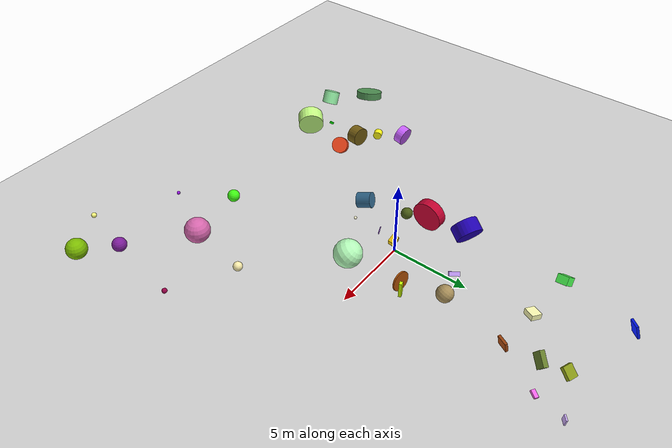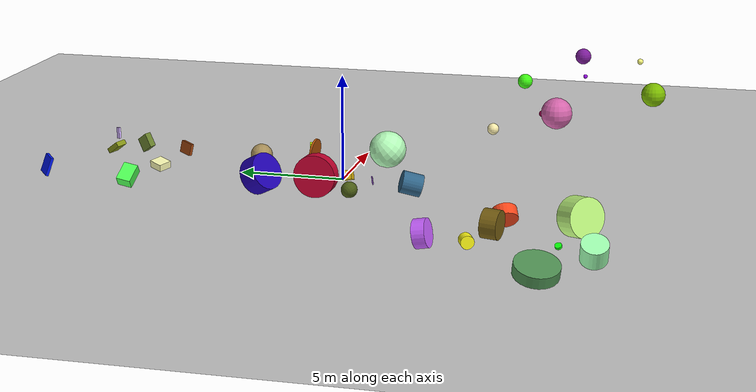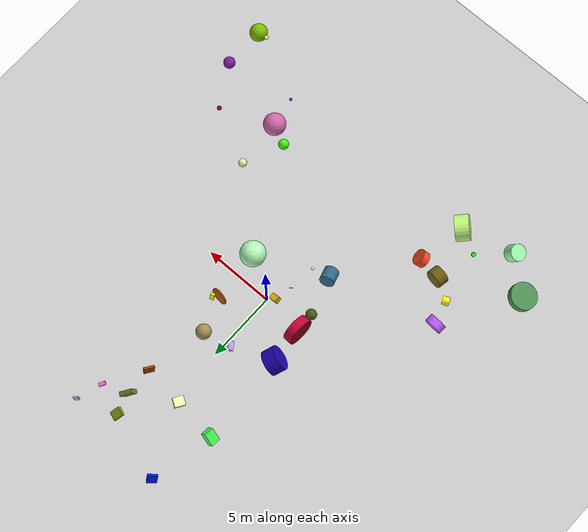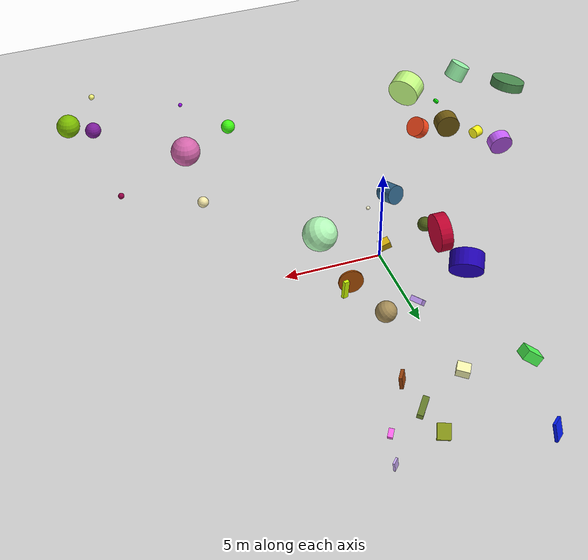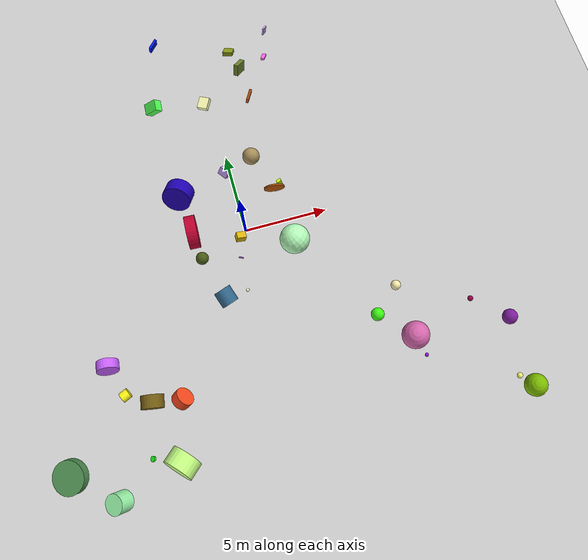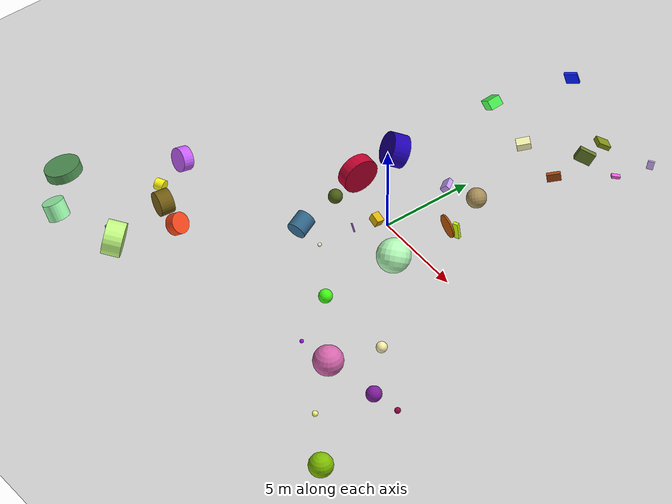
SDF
<?xml version="1.0" ?>
<sdf version="1.6">
  <world name="default">
    <atmosphere type="adiabatic"/>
    <light name="group/sun" type="directional">
      <direction>-0.5 0.1 -0.9</direction>
      <attenuation>
        <range>1000.0</range>
        <quadratic>0.001</quadratic>
        <constant>0.9</constant>
        <linear>0.01</linear>
      </attenuation>
      <pose frame="">0 0 20 0 -0 0</pose>
      <cast_shadows>1</cast_shadows>
      <specular>0.2 0.2 0.2 1</specular>
      <diffuse>0.8 0.8 0.8 1.0</diffuse>
    </light>
    <gravity>0 0 -9.8</gravity>
    <model name="cylinder">
      <allow_auto_disable>0</allow_auto_disable>
      <static>0</static>
      <pose frame="">-8.88345 -7.64428 0.301629 2.73135 1.54346 -1.01534e-15</pose>
      <link name="link">
        <kinematic>0</kinematic>
        <inertial>
          <pose frame="">0 0 0 0 -0 0</pose>
          <mass>0.420449504234</mass>
          <inertia>
            <ixz>0.0</ixz>
            <ixx>0.0176564145472</ixx>
            <ixy>0.0</ixy>
            <izz>0.0183662574659</izz>
            <iyy>0.0176564145472</iyy>
            <iyz>0.0</iyz>
          </inertia>
        </inertial>
        <pose frame="">0 0 0 0 -0 0</pose>
        <gravity>1</gravity>
        <self_collide>0</self_collide>
        <collision name="collision">
          <geometry>
            <cylinder>
              <length>0.491767279188</length>
              <radius>0.295575484091</radius>
            </cylinder>
          </geometry>
          <max_contacts>20</max_contacts>
          <pose frame="">0 0 0 0 -0 0</pose>
        </collision>
        <visual name="visual">
          <geometry>
            <cylinder>
              <length>0.491767279188</length>
              <radius>0.295575484091</radius>
            </cylinder>
          </geometry>
          <material>
            <diffuse>1.0 0.976470588235 0.0901960784314 1</diffuse>
            <ambient>1 0.976471 0.0901961 1</ambient>
          </material>
          <cast_shadows>1</cast_shadows>
          <transparency>0.0</transparency>
          <pose frame="">0 0 0 0 -0 0</pose>
        </visual>
      </link>
      <self_collide>0</self_collide>
    </model>
    <model name="cuboid">
      <allow_auto_disable>0</allow_auto_disable>
      <static>0</static>
      <pose frame="">2.73064 2.28966 0.480365 -2.9038 1.44472 0.552469</pose>
      <link name="link">
        <kinematic>0</kinematic>
        <inertial>
          <pose frame="">0 0 0 0 -0 0</pose>
          <mass>0.275583620946</mass>
          <inertia>
            <ixz>0.0</ixz>
            <ixx>0.00255171124685</ixx>
            <ixy>0.0</ixy>
            <izz>0.0204856126975</izz>
            <iyy>0.0216394588672</iyy>
            <iyz>0.0</iyz>
          </inertia>
        </inertial>
        <pose frame="">0 0 0 0 -0 0</pose>
        <gravity>1</gravity>
        <self_collide>0</self_collide>
        <collision name="collision">
          <geometry>
            <box>
              <size>0.928219 0.174454 0.284038</size>
            </box>
          </geometry>
          <max_contacts>20</max_contacts>
          <pose frame="">0 0 0 0 -0 0</pose>
        </collision>
        <visual name="visual">
          <geometry>
            <box>
              <size>0.928219 0.174454 0.284038</size>
            </box>
          </geometry>
          <material>
            <diffuse>0.803921568627 0.992156862745 0.0078431372549 1</diffuse>
            <ambient>0.803922 0.992157 0.00784314 1</ambient>
          </material>
          <cast_shadows>1</cast_shadows>
          <transparency>0.0</transparency>
          <pose frame="">0 0 0 0 -0 0</pose>
        </visual>
      </link>
      <self_collide>0</self_collide>
    </model>
    <model name="cuboid_7">
      <allow_auto_disable>0</allow_auto_disable>
      <static>0</static>
      <pose frame="">4.11034 11.3443 0.137054 2.0256 1.30503 -1.66371</pose>
      <link name="link">
        <kinematic>0</kinematic>
        <inertial>
          <pose frame="">0 0 0 0 -0 0</pose>
          <mass>0.415318016222</mass>
          <inertia>
            <ixz>0.0</ixz>
            <ixx>0.00924436996587</ixx>
            <ixy>0.0</ixy>
            <izz>0.00782793442775</izz>
            <iyy>0.00284278543665</iyy>
            <iyz>0.0</iyz>
          </inertia>
        </inertial>
        <pose frame="">0 0 0 0 -0 0</pose>
        <gravity>1</gravity>
        <self_collide>0</self_collide>
        <collision name="collision">
          <geometry>
            <box>
              <size>0.143548 0.453399 0.248056</size>
            </box>
          </geometry>
          <max_contacts>20</max_contacts>
          <pose frame="">0 0 0 0 -0 0</pose>
        </collision>
        <visual name="visual">
          <geometry>
            <box>
              <size>0.143548 0.453399 0.248056</size>
            </box>
          </geometry>
          <material>
            <diffuse>1.0 0.388235294118 0.913725490196 1</diffuse>
            <ambient>1 0.388235 0.913725 1</ambient>
          </material>
          <cast_shadows>1</cast_shadows>
          <transparency>0.0</transparency>
          <pose frame="">0 0 0 0 -0 0</pose>
        </visual>
      </link>
      <self_collide>0</self_collide>
    </model>
    <model name="cuboid_6">
      <allow_auto_disable>0</allow_auto_disable>
      <static>0</static>
      <pose frame="">-3.5968 9.3845 0.550721 0.686225 0.16848 -1.63833</pose>
      <link name="link">
        <kinematic>0</kinematic>
        <inertial>
          <pose frame="">0 0 0 0 -0 0</pose>
          <mass>0.127752500951</mass>
          <inertia>
            <ixz>0.0</ixz>
            <ixx>0.012345772646</ixx>
            <ixy>0.0</ixy>
            <izz>0.0144442273607</izz>
            <iyy>0.00790231115094</iyy>
            <iyz>0.0</iyz>
          </inertia>
        </inertial>
        <pose frame="">0 0 0 0 -0 0</pose>
        <gravity>1</gravity>
        <self_collide>0</self_collide>
        <collision name="collision">
          <geometry>
            <box>
              <size>0.685342 0.941847 0.522095</size>
            </box>
          </geometry>
          <max_contacts>20</max_contacts>
          <pose frame="">0 0 0 0 -0 0</pose>
        </collision>
        <visual name="visual">
          <geometry>
            <box>
              <size>0.685342 0.941847 0.522095</size>
            </box>
          </geometry>
          <material>
            <diffuse>0.305882352941 0.992156862745 0.329411764706 1</diffuse>
            <ambient>0.305882 0.992157 0.329412 1</ambient>
          </material>
          <cast_shadows>1</cast_shadows>
          <transparency>0.0</transparency>
          <pose frame="">0 0 0 0 -0 0</pose>
        </visual>
      </link>
      <self_collide>0</self_collide>
    </model>
    <model name="cuboid_5">
      <allow_auto_disable>0</allow_auto_disable>
      <static>0</static>
      <pose frame="">2.45066 8.66659 0.350901 -2.47986 -1.35944 -1.20505</pose>
      <link name="link">
        <kinematic>0</kinematic>
        <inertial>
          <pose frame="">0 0 0 0 -0 0</pose>
          <mass>0.699296504962</mass>
          <inertia>
            <ixz>0.0</ixz>
            <ixx>0.0325672144286</ixx>
            <ixy>0.0</ixy>
            <izz>0.0515609055258</izz>
            <iyy>0.0221154868499</iyy>
            <iyz>0.0</iyz>
          </inertia>
        </inertial>
        <pose frame="">0 0 0 0 -0 0</pose>
        <gravity>1</gravity>
        <self_collide>0</self_collide>
        <collision name="collision">
          <geometry>
            <box>
              <size>0.593901 0.729432 0.163662</size>
            </box>
          </geometry>
          <max_contacts>20</max_contacts>
          <pose frame="">0 0 0 0 -0 0</pose>
        </collision>
        <visual name="visual">
          <geometry>
            <box>
              <size>0.593901 0.729432 0.163662</size>
            </box>
          </geometry>
          <material>
            <diffuse>0.627450980392 0.270588235294 0.0549019607843 1</diffuse>
            <ambient>0.627451 0.270588 0.054902 1</ambient>
          </material>
          <cast_shadows>1</cast_shadows>
          <transparency>0.0</transparency>
          <pose frame="">0 0 0 0 -0 0</pose>
        </visual>
      </link>
      <self_collide>0</self_collide>
    </model>
    <model name="cuboid_4">
      <allow_auto_disable>0</allow_auto_disable>
      <static>0</static>
      <pose frame="">-2.65857 13.8559 0.502406 2.84496 0.167367 -2.38742</pose>
      <link name="link">
        <kinematic>0</kinematic>
        <inertial>
          <pose frame="">0 0 0 0 -0 0</pose>
          <mass>0.588542747056</mass>
          <inertia>
            <ixz>0.0</ixz>
            <ixx>0.0406767653405</ixx>
            <ixy>0.0</ixy>
            <izz>0.0244388118272</izz>
            <iyy>0.0630153020406</iyy>
            <iyz>0.0</iyz>
          </inertia>
        </inertial>
        <pose frame="">0 0 0 0 -0 0</pose>
        <gravity>1</gravity>
        <self_collide>0</self_collide>
        <collision name="collision">
          <geometry>
            <box>
              <size>0.690565 0.146327 0.898866</size>
            </box>
          </geometry>
          <max_contacts>20</max_contacts>
          <pose frame="">0 0 0 0 -0 0</pose>
        </collision>
        <visual name="visual">
          <geometry>
            <box>
              <size>0.690565 0.146327 0.898866</size>
            </box>
          </geometry>
          <material>
            <diffuse>0.0078431372549 0.105882352941 0.976470588235 1</diffuse>
            <ambient>0.00784314 0.105882 0.976471 1</ambient>
          </material>
          <cast_shadows>1</cast_shadows>
          <transparency>0.0</transparency>
          <pose frame="">0 0 0 0 -0 0</pose>
        </visual>
      </link>
      <self_collide>0</self_collide>
    </model>
    <model name="cuboid_3">
      <allow_auto_disable>0</allow_auto_disable>
      <static>0</static>
      <pose frame="">-0.402149 -0.368209 0.330192 -1.90648 -0.189173 -1.52641</pose>
      <link name="link">
        <kinematic>0</kinematic>
        <inertial>
          <pose frame="">0 0 0 0 -0 0</pose>
          <mass>0.967904357186</mass>
          <inertia>
            <ixz>0.0</ixz>
            <ixx>0.0397575332008</ixx>
            <ixy>0.0</ixy>
            <izz>0.0299328997805</izz>
            <iyy>0.0395996607649</iyy>
            <iyz>0.0</iyz>
          </inertia>
        </inertial>
        <pose frame="">0 0 0 0 -0 0</pose>
        <gravity>1</gravity>
        <self_collide>0</self_collide>
        <collision name="collision">
          <geometry>
            <box>
              <size>0.429621 0.431893 0.553515</size>
            </box>
          </geometry>
          <max_contacts>20</max_contacts>
          <pose frame="">0 0 0 0 -0 0</pose>
        </collision>
        <visual name="visual">
          <geometry>
            <box>
              <size>0.429621 0.431893 0.553515</size>
            </box>
          </geometry>
          <material>
            <diffuse>0.858823529412 0.705882352941 0.0470588235294 1</diffuse>
            <ambient>0.858824 0.705882 0.0470588 1</ambient>
          </material>
          <cast_shadows>1</cast_shadows>
          <transparency>0.0</transparency>
          <pose frame="">0 0 0 0 -0 0</pose>
        </visual>
      </link>
      <self_collide>0</self_collide>
    </model>
    <model name="cuboid_2">
      <allow_auto_disable>0</allow_auto_disable>
      <static>0</static>
      <pose frame="">-0.689775 -1.6185 0.238166 -2.81068 0.36883 -2.32449</pose>
      <link name="link">
        <kinematic>0</kinematic>
        <inertial>
          <pose frame="">0 0 0 0 -0 0</pose>
          <mass>0.70911772063</mass>
          <inertia>
            <ixz>0.0</ixz>
            <ixx>0.0145948840139</ixx>
            <ixy>0.0</ixy>
            <izz>0.000429727144734</izz>
            <iyy>0.0148091645293</iyy>
            <iyz>0.0</iyz>
          </inertia>
        </inertial>
        <pose frame="">0 0 0 0 -0 0</pose>
        <gravity>1</gravity>
        <self_collide>0</self_collide>
        <collision name="collision">
          <geometry>
            <box>
              <size>0.0738179 0.0426959 0.495134</size>
            </box>
          </geometry>
          <max_contacts>20</max_contacts>
          <pose frame="">0 0 0 0 -0 0</pose>
        </collision>
        <visual name="visual">
          <geometry>
            <box>
              <size>0.0738179 0.0426959 0.495134</size>
            </box>
          </geometry>
          <material>
            <diffuse>0.701960784314 0.435294117647 0.964705882353 1</diffuse>
            <ambient>0.701961 0.435294 0.964706 1</ambient>
          </material>
          <cast_shadows>1</cast_shadows>
          <transparency>0.0</transparency>
          <pose frame="">0 0 0 0 -0 0</pose>
        </visual>
      </link>
      <self_collide>0</self_collide>
    </model>
    <model name="cuboid_1">
      <allow_auto_disable>0</allow_auto_disable>
      <static>0</static>
      <pose frame="">-0.344435 3.98685 0.260107 1.57655 0.789974 -2.50977</pose>
      <link name="link">
        <kinematic>0</kinematic>
        <inertial>
          <pose frame="">0 0 0 0 -0 0</pose>
          <mass>0.808031799206</mass>
          <inertia>
            <ixz>0.0</ixz>
            <ixx>0.0317887161804</ixx>
            <ixy>0.0</ixy>
            <izz>0.0193071423133</izz>
            <iyy>0.0414914633755</iyy>
            <iyz>0.0</iyz>
          </inertia>
        </inertial>
        <pose frame="">0 0 0 0 -0 0</pose>
        <gravity>1</gravity>
        <self_collide>0</self_collide>
        <collision name="collision">
          <geometry>
            <box>
              <size>0.464124 0.267052 0.633067</size>
            </box>
          </geometry>
          <max_contacts>20</max_contacts>
          <pose frame="">0 0 0 0 -0 0</pose>
        </collision>
        <visual name="visual">
          <geometry>
            <box>
              <size>0.464124 0.267052 0.633067</size>
            </box>
          </geometry>
          <material>
            <diffuse>0.792156862745 0.627450980392 1.0 1</diffuse>
            <ambient>0.792157 0.627451 1 1</ambient>
          </material>
          <cast_shadows>1</cast_shadows>
          <transparency>0.0</transparency>
          <pose frame="">0 0 0 0 -0 0</pose>
        </visual>
      </link>
      <self_collide>0</self_collide>
    </model>
    <model name="cylinder_11">
      <allow_auto_disable>0</allow_auto_disable>
      <static>0</static>
      <pose frame="">-3.08162 0.440654 0.994113 -1.70234 1.34954 -1.73662</pose>
      <link name="link">
        <kinematic>0</kinematic>
        <inertial>
          <pose frame="">0 0 0 0 -0 0</pose>
          <mass>0.19075837809</mass>
          <inertia>
            <ixz>0.0</ixz>
            <ixx>0.0525499972108</ixx>
            <ixy>0.0</ixy>
            <izz>0.092687990486</izz>
            <iyy>0.0525499972108</iyy>
            <iyz>0.0</iyz>
          </inertia>
        </inertial>
        <pose frame="">0 0 0 0 -0 0</pose>
        <gravity>1</gravity>
        <self_collide>0</self_collide>
        <collision name="collision">
          <geometry>
            <cylinder>
              <length>0.6248197761</length>
              <radius>0.985791162665</radius>
            </cylinder>
          </geometry>
          <max_contacts>20</max_contacts>
          <pose frame="">0 0 0 0 -0 0</pose>
        </collision>
        <visual name="visual">
          <geometry>
            <cylinder>
              <length>0.6248197761</length>
              <radius>0.985791162665</radius>
            </cylinder>
          </geometry>
          <material>
            <diffuse>0.752941176471 0.0078431372549 0.18431372549 1</diffuse>
            <ambient>0.752941 0.00784314 0.184314 1</ambient>
          </material>
          <cast_shadows>1</cast_shadows>
          <transparency>0.0</transparency>
          <pose frame="">0 0 0 0 -0 0</pose>
        </visual>
      </link>
      <self_collide>0</self_collide>
    </model>
    <model name="cylinder_10">
      <allow_auto_disable>0</allow_auto_disable>
      <static>0</static>
      <pose frame="">2.33888 2.01075 0.62675 1.68696 -0.18526 -0.145754</pose>
      <link name="link">
        <kinematic>0</kinematic>
        <inertial>
          <pose frame="">0 0 0 0 -0 0</pose>
          <mass>0.557636464645</mass>
          <inertia>
            <ixz>0.0</ixz>
            <ixx>0.0549482865547</ixx>
            <ixy>0.0</ixy>
            <izz>0.108967179002</izz>
            <iyy>0.0549482865547</iyy>
            <iyz>0.0</iyz>
          </inertia>
        </inertial>
        <pose frame="">0 0 0 0 -0 0</pose>
        <gravity>1</gravity>
        <self_collide>0</self_collide>
        <collision name="collision">
          <geometry>
            <cylinder>
              <length>0.1</length>
              <radius>0.625154366825</radius>
            </cylinder>
          </geometry>
          <max_contacts>20</max_contacts>
          <pose frame="">0 0 0 0 -0 0</pose>
        </collision>
        <visual name="visual">
          <geometry>
            <cylinder>
              <length>0.1</length>
              <radius>0.625154366825</radius>
            </cylinder>
          </geometry>
          <material>
            <diffuse>0.674509803922 0.309803921569 0.0235294117647 1</diffuse>
            <ambient>0.67451 0.309804 0.0235294 1</ambient>
          </material>
          <cast_shadows>1</cast_shadows>
          <transparency>0.0</transparency>
          <pose frame="">0 0 0 0 -0 0</pose>
        </visual>
      </link>
      <self_collide>0</self_collide>
    </model>
    <model name="cuboid_9">
      <allow_auto_disable>0</allow_auto_disable>
      <static>0</static>
      <pose frame="">-0.441233 8.97251 0.267765 2.34811 -1.35973 -2.88506</pose>
      <link name="link">
        <kinematic>0</kinematic>
        <inertial>
          <pose frame="">0 0 0 0 -0 0</pose>
          <mass>0.959522851609</mass>
          <inertia>
            <ixz>0.0</ixz>
            <ixx>0.0768844545552</ixx>
            <ixy>0.0</ixy>
            <izz>0.0523883911799</izz>
            <iyy>0.0427559107268</iyy>
            <iyz>0.0</iyz>
          </inertia>
        </inertial>
        <pose frame="">0 0 0 0 -0 0</pose>
        <gravity>1</gravity>
        <self_collide>0</self_collide>
        <collision name="collision">
          <geometry>
            <box>
              <size>0.337906 0.735527 0.648486</size>
            </box>
          </geometry>
          <max_contacts>20</max_contacts>
          <pose frame="">0 0 0 0 -0 0</pose>
        </collision>
        <visual name="visual">
          <geometry>
            <box>
              <size>0.337906 0.735527 0.648486</size>
            </box>
          </geometry>
          <material>
            <diffuse>1.0 0.996078431373 0.713725490196 1</diffuse>
            <ambient>1 0.996078 0.713725 1</ambient>
          </material>
          <cast_shadows>1</cast_shadows>
          <transparency>0.0</transparency>
          <pose frame="">0 0 0 0 -0 0</pose>
        </visual>
      </link>
      <self_collide>0</self_collide>
    </model>
    <model name="cuboid_8">
      <allow_auto_disable>0</allow_auto_disable>
      <static>0</static>
      <pose frame="">4.64953 13.17 0.30841 -2.94443 -1.39008 0.562978</pose>
      <link name="link">
        <kinematic>0</kinematic>
        <inertial>
          <pose frame="">0 0 0 0 -0 0</pose>
          <mass>0.187271177603</mass>
          <inertia>
            <ixz>0.0</ixz>
            <ixx>0.0019835315921</ixx>
            <ixy>0.0</ixy>
            <izz>0.00504940106489</izz>
            <iyy>0.00679151657157</iyy>
            <iyz>0.0</iyz>
          </inertia>
        </inertial>
        <pose frame="">0 0 0 0 -0 0</pose>
        <gravity>1</gravity>
        <self_collide>0</self_collide>
        <collision name="collision">
          <geometry>
            <box>
              <size>0.56198 0.0879475 0.345494</size>
            </box>
          </geometry>
          <max_contacts>20</max_contacts>
          <pose frame="">0 0 0 0 -0 0</pose>
        </collision>
        <visual name="visual">
          <geometry>
            <box>
              <size>0.56198 0.0879475 0.345494</size>
            </box>
          </geometry>
          <material>
            <diffuse>0.807843137255 0.682352941176 0.980392156863 1</diffuse>
            <ambient>0.807843 0.682353 0.980392 1</ambient>
          </material>
          <cast_shadows>1</cast_shadows>
          <transparency>0.0</transparency>
          <pose frame="">0 0 0 0 -0 0</pose>
        </visual>
      </link>
      <self_collide>0</self_collide>
    </model>
    <model name="cylinder_9">
      <allow_auto_disable>0</allow_auto_disable>
      <static>0</static>
      <pose frame="">-3.34911 2.98221 0.981661 0.368207 -1.06389 0.686842</pose>
      <link name="link">
        <kinematic>0</kinematic>
        <inertial>
          <pose frame="">0 0 0 0 -0 0</pose>
          <mass>0.202478222105</mass>
          <inertia>
            <ixz>0.0</ixz>
            <ixx>0.0522882726241</ixx>
            <ixy>0.0</ixy>
            <izz>0.0765701642064</izz>
            <iyy>0.0522882726241</iyy>
            <iyz>0.0</iyz>
          </inertia>
        </inertial>
        <pose frame="">0 0 0 0 -0 0</pose>
        <gravity>1</gravity>
        <self_collide>0</self_collide>
        <collision name="collision">
          <geometry>
            <cylinder>
              <length>0.910992837577</length>
              <radius>0.869672280223</radius>
            </cylinder>
          </geometry>
          <max_contacts>20</max_contacts>
          <pose frame="">0 0 0 0 -0 0</pose>
        </collision>
        <visual name="visual">
          <geometry>
            <cylinder>
              <length>0.910992837577</length>
              <radius>0.869672280223</radius>
            </cylinder>
          </geometry>
          <material>
            <diffuse>0.125490196078 0.0 0.694117647059 1</diffuse>
            <ambient>0.12549 0 0.694118 1</ambient>
          </material>
          <cast_shadows>1</cast_shadows>
          <transparency>0.0</transparency>
          <pose frame="">0 0 0 0 -0 0</pose>
        </visual>
      </link>
      <self_collide>0</self_collide>
    </model>
    <model name="cylinder_8">
      <allow_auto_disable>0</allow_auto_disable>
      <static>0</static>
      <pose frame="">-2.1078 -3.78632 0.623027 -2.45663 1.2198 2.61151</pose>
      <link name="link">
        <kinematic>0</kinematic>
        <inertial>
          <pose frame="">0 0 0 0 -0 0</pose>
          <mass>0.744334276761</mass>
          <inertia>
            <ixz>0.0</ixz>
            <ixx>0.105377505374</ixx>
            <ixy>0.0</ixy>
            <izz>0.0988781269524</izz>
            <iyy>0.105377505374</iyy>
            <iyz>0.0</iyz>
          </inertia>
        </inertial>
        <pose frame="">0 0 0 0 -0 0</pose>
        <gravity>1</gravity>
        <self_collide>0</self_collide>
        <collision name="collision">
          <geometry>
            <cylinder>
              <length>0.949646115979</length>
              <radius>0.515443543432</radius>
            </cylinder>
          </geometry>
          <max_contacts>20</max_contacts>
          <pose frame="">0 0 0 0 -0 0</pose>
        </collision>
        <visual name="visual">
          <geometry>
            <cylinder>
              <length>0.949646115979</length>
              <radius>0.515443543432</radius>
            </cylinder>
          </geometry>
          <material>
            <diffuse>0.192156862745 0.4 0.541176470588 1</diffuse>
            <ambient>0.192157 0.4 0.541176 1</ambient>
          </material>
          <cast_shadows>1</cast_shadows>
          <transparency>0.0</transparency>
          <pose frame="">0 0 0 0 -0 0</pose>
        </visual>
      </link>
      <self_collide>0</self_collide>
    </model>
    <model name="cuboid_11">
      <allow_auto_disable>0</allow_auto_disable>
      <static>0</static>
      <pose frame="">1.96949 12.1861 0.330687 -1.6582 -0.951987 1.2862</pose>
      <link name="link">
        <kinematic>0</kinematic>
        <inertial>
          <pose frame="">0 0 0 0 -0 0</pose>
          <mass>0.565751800006</mass>
          <inertia>
            <ixz>0.0</ixz>
            <ixx>0.0443241193825</ixx>
            <ixy>0.0</ixy>
            <izz>0.0289398294124</izz>
            <iyy>0.021066053161</iyy>
            <iyz>0.0</iyz>
          </inertia>
        </inertial>
        <pose frame="">0 0 0 0 -0 0</pose>
        <gravity>1</gravity>
        <self_collide>0</self_collide>
        <collision name="collision">
          <geometry>
            <box>
              <size>0.245473 0.744028 0.621747</size>
            </box>
          </geometry>
          <max_contacts>20</max_contacts>
          <pose frame="">0 0 0 0 -0 0</pose>
        </collision>
        <visual name="visual">
          <geometry>
            <box>
              <size>0.245473 0.744028 0.621747</size>
            </box>
          </geometry>
          <material>
            <diffuse>0.533333333333 0.592156862745 0.0901960784314 1</diffuse>
            <ambient>0.533333 0.592157 0.0901961 1</ambient>
          </material>
          <cast_shadows>1</cast_shadows>
          <transparency>0.0</transparency>
          <pose frame="">0 0 0 0 -0 0</pose>
        </visual>
      </link>
      <self_collide>0</self_collide>
    </model>
    <model name="cuboid_10">
      <allow_auto_disable>0</allow_auto_disable>
      <static>0</static>
      <pose frame="">2.34274 10.738 0.543216 -2.84619 1.03911 -1.96769</pose>
      <link name="link">
        <kinematic>0</kinematic>
        <inertial>
          <pose frame="">0 0 0 0 -0 0</pose>
          <mass>0.586963601263</mass>
          <inertia>
            <ixz>0.0</ixz>
            <ixx>0.0441877648045</ixx>
            <ixy>0.0</ixy>
            <izz>0.028424741777</izz>
            <iyy>0.0639092797207</iyy>
            <iyz>0.0</iyz>
          </inertia>
        </inertial>
        <pose frame="">0 0 0 0 -0 0</pose>
        <gravity>1</gravity>
        <self_collide>0</self_collide>
        <collision name="collision">
          <geometry>
            <box>
              <size>0.701538 0.29827 0.902451</size>
            </box>
          </geometry>
          <max_contacts>20</max_contacts>
          <pose frame="">0 0 0 0 -0 0</pose>
        </collision>
        <visual name="visual">
          <geometry>
            <box>
              <size>0.701538 0.29827 0.902451</size>
            </box>
          </geometry>
          <material>
            <diffuse>0.4 0.494117647059 0.172549019608 1</diffuse>
            <ambient>0.4 0.494118 0.172549 1</ambient>
          </material>
          <cast_shadows>1</cast_shadows>
          <transparency>0.0</transparency>
          <pose frame="">0 0 0 0 -0 0</pose>
        </visual>
      </link>
      <self_collide>0</self_collide>
    </model>
    <model name="cylinder_1">
      <allow_auto_disable>0</allow_auto_disable>
      <static>0</static>
      <pose frame="">-6.5277 -12.0623 0.957076 0.742338 -1.35071 -2.54269e-16</pose>
      <link name="link">
        <kinematic>0</kinematic>
        <inertial>
          <pose frame="">0 0 0 0 -0 0</pose>
          <mass>0.529796709174</mass>
          <inertia>
            <ixz>0.0</ixz>
            <ixx>0.14659787219</ixx>
            <ixy>0.0</ixy>
            <izz>0.210720736677</izz>
            <iyy>0.14659787219</iyy>
            <iyz>0.0</iyz>
          </inertia>
        </inertial>
        <pose frame="">0 0 0 0 -0 0</pose>
        <gravity>1</gravity>
        <self_collide>0</self_collide>
        <collision name="collision">
          <geometry>
            <cylinder>
              <length>0.96645620648</length>
              <radius>0.891895571637</radius>
            </cylinder>
          </geometry>
          <max_contacts>20</max_contacts>
          <pose frame="">0 0 0 0 -0 0</pose>
        </collision>
        <visual name="visual">
          <geometry>
            <cylinder>
              <length>0.96645620648</length>
              <radius>0.891895571637</radius>
            </cylinder>
          </geometry>
          <material>
            <diffuse>0.76862745098 0.996078431373 0.509803921569 1</diffuse>
            <ambient>0.768627 0.996078 0.509804 1</ambient>
          </material>
          <cast_shadows>1</cast_shadows>
          <transparency>0.0</transparency>
          <pose frame="">0 0 0 0 -0 0</pose>
        </visual>
      </link>
      <self_collide>0</self_collide>
    </model>
    <model name="cylinder_3">
      <allow_auto_disable>0</allow_auto_disable>
      <static>0</static>
      <pose frame="">-12.5026 -11.1137 0.548044 -2.99456 -0.294689 1.08772e-17</pose>
      <link name="link">
        <kinematic>0</kinematic>
        <inertial>
          <pose frame="">0 0 0 0 -0 0</pose>
          <mass>0.481017029964</mass>
          <inertia>
            <ixz>0.0</ixz>
            <ixx>0.119952252922</ixx>
            <ixy>0.0</ixy>
            <izz>0.219172689681</izz>
            <iyy>0.119952252922</iyy>
            <iyz>0.0</iyz>
          </inertia>
        </inertial>
        <pose frame="">0 0 0 0 -0 0</pose>
        <gravity>1</gravity>
        <self_collide>0</self_collide>
        <collision name="collision">
          <geometry>
            <cylinder>
              <length>0.50852706675</length>
              <radius>0.954614419825</radius>
            </cylinder>
          </geometry>
          <max_contacts>20</max_contacts>
          <pose frame="">0 0 0 0 -0 0</pose>
        </collision>
        <visual name="visual">
          <geometry>
            <cylinder>
              <length>0.50852706675</length>
              <radius>0.954614419825</radius>
            </cylinder>
          </geometry>
          <material>
            <diffuse>0.309803921569 0.56862745098 0.325490196078 1</diffuse>
            <ambient>0.309804 0.568627 0.32549 1</ambient>
          </material>
          <cast_shadows>1</cast_shadows>
          <transparency>0.0</transparency>
          <pose frame="">0 0 0 0 -0 0</pose>
        </visual>
      </link>
      <self_collide>0</self_collide>
    </model>
    <model name="cylinder_2">
      <allow_auto_disable>0</allow_auto_disable>
      <static>0</static>
      <pose frame="">-10.1955 -13.084 0.68873 3.04733 0.523672 3.14159</pose>
      <link name="link">
        <kinematic>0</kinematic>
        <inertial>
          <pose frame="">0 0 0 0 -0 0</pose>
          <mass>0.422305299043</mass>
          <inertia>
            <ixz>0.0</ixz>
            <ixx>0.0650549379851</ixx>
            <ixy>0.0</ixy>
            <izz>0.0709472690483</izz>
            <iyy>0.0650549379851</iyy>
            <iyz>0.0</iyz>
          </inertia>
        </inertial>
        <pose frame="">0 0 0 0 -0 0</pose>
        <gravity>1</gravity>
        <self_collide>0</self_collide>
        <collision name="collision">
          <geometry>
            <cylinder>
              <length>0.916824079081</length>
              <radius>0.57965498328</radius>
            </cylinder>
          </geometry>
          <max_contacts>20</max_contacts>
          <pose frame="">0 0 0 0 -0 0</pose>
        </collision>
        <visual name="visual">
          <geometry>
            <cylinder>
              <length>0.916824079081</length>
              <radius>0.57965498328</radius>
            </cylinder>
          </geometry>
          <material>
            <diffuse>0.623529411765 0.996078431373 0.690196078431 1</diffuse>
            <ambient>0.623529 0.996078 0.690196 1</ambient>
          </material>
          <cast_shadows>1</cast_shadows>
          <transparency>0.0</transparency>
          <pose frame="">0 0 0 0 -0 0</pose>
        </visual>
      </link>
      <self_collide>0</self_collide>
    </model>
    <model name="cylinder_5">
      <allow_auto_disable>0</allow_auto_disable>
      <static>0</static>
      <pose frame="">-5.81838 -8.73767 0.598011 0.288731 -0.848021 3.14159</pose>
      <link name="link">
        <kinematic>0</kinematic>
        <inertial>
          <pose frame="">0 0 0 0 -0 0</pose>
          <mass>0.839387900694</mass>
          <inertia>
            <ixz>0.0</ixz>
            <ixx>0.0847113419942</ixx>
            <ixy>0.0</ixy>
            <izz>0.130243189649</izz>
            <iyy>0.0847113419942</iyy>
            <iyz>0.0</iyz>
          </inertia>
        </inertial>
        <pose frame="">0 0 0 0 -0 0</pose>
        <gravity>1</gravity>
        <self_collide>0</self_collide>
        <collision name="collision">
          <geometry>
            <cylinder>
              <length>0.529204692036</length>
              <radius>0.557071778143</radius>
            </cylinder>
          </geometry>
          <max_contacts>20</max_contacts>
          <pose frame="">0 0 0 0 -0 0</pose>
        </collision>
        <visual name="visual">
          <geometry>
            <cylinder>
              <length>0.529204692036</length>
              <radius>0.557071778143</radius>
            </cylinder>
          </geometry>
          <material>
            <diffuse>0.972549019608 0.282352941176 0.109803921569 1</diffuse>
            <ambient>0.972549 0.282353 0.109804 1</ambient>
          </material>
          <cast_shadows>1</cast_shadows>
          <transparency>0.0</transparency>
          <pose frame="">0 0 0 0 -0 0</pose>
        </visual>
      </link>
      <self_collide>0</self_collide>
    </model>
    <model name="cylinder_4">
      <allow_auto_disable>0</allow_auto_disable>
      <static>0</static>
      <pose frame="">-9.45408 -5.88113 0.671117 1.38074 -0.31065 2.91509e-17</pose>
      <link name="link">
        <kinematic>0</kinematic>
        <inertial>
          <pose frame="">0 0 0 0 -0 0</pose>
          <mass>0.903057067012</mass>
          <inertia>
            <ixz>0.0</ixz>
            <ixx>0.114472706005</ixx>
            <ixy>0.0</ixy>
            <izz>0.180478811947</izz>
            <iyy>0.114472706005</iyy>
            <iyz>0.0</iyz>
          </inertia>
        </inertial>
        <pose frame="">0 0 0 0 -0 0</pose>
        <gravity>1</gravity>
        <self_collide>0</self_collide>
        <collision name="collision">
          <geometry>
            <cylinder>
              <length>0.56746529337</length>
              <radius>0.632223321009</radius>
            </cylinder>
          </geometry>
          <max_contacts>20</max_contacts>
          <pose frame="">0 0 0 0 -0 0</pose>
        </collision>
        <visual name="visual">
          <geometry>
            <cylinder>
              <length>0.56746529337</length>
              <radius>0.632223321009</radius>
            </cylinder>
          </geometry>
          <material>
            <diffuse>0.780392156863 0.376470588235 1.0 1</diffuse>
            <ambient>0.780392 0.376471 1 1</ambient>
          </material>
          <cast_shadows>1</cast_shadows>
          <transparency>0.0</transparency>
          <pose frame="">0 0 0 0 -0 0</pose>
        </visual>
      </link>
      <self_collide>0</self_collide>
    </model>
    <model name="cylinder_7">
      <allow_auto_disable>0</allow_auto_disable>
      <static>0</static>
      <pose frame="">-8.13268 -11.3724 0.130175 3.03624 -0.550679 0</pose>
      <link name="link">
        <kinematic>0</kinematic>
        <inertial>
          <pose frame="">0 0 0 0 -0 0</pose>
          <mass>0.1</mass>
          <inertia>
            <ixz>0.0</ixz>
            <ixx>0.000705137786275</ixx>
            <ixy>0.0</ixy>
            <izz>0.00119531615268</izz>
            <iyy>0.000705137786275</iyy>
            <iyz>0.0</iyz>
          </inertia>
        </inertial>
        <pose frame="">0 0 0 0 -0 0</pose>
        <gravity>1</gravity>
        <self_collide>0</self_collide>
        <collision name="collision">
          <geometry>
            <cylinder>
              <length>0.113567447767</length>
              <radius>0.154616697202</radius>
            </cylinder>
          </geometry>
          <max_contacts>20</max_contacts>
          <pose frame="">0 0 0 0 -0 0</pose>
        </collision>
        <visual name="visual">
          <geometry>
            <cylinder>
              <length>0.113567447767</length>
              <radius>0.154616697202</radius>
            </cylinder>
          </geometry>
          <material>
            <diffuse>0.0470588235294 1.0 0.0470588235294 1</diffuse>
            <ambient>0.0470588 1 0.0470588 1</ambient>
          </material>
          <cast_shadows>1</cast_shadows>
          <transparency>0.0</transparency>
          <pose frame="">0 0 0 0 -0 0</pose>
        </visual>
      </link>
      <self_collide>0</self_collide>
    </model>
    <model name="cylinder_6">
      <allow_auto_disable>0</allow_auto_disable>
      <static>0</static>
      <pose frame="">-7.44989 -8.45688 0.659959 -1.40225 1.30918 2.14626e-16</pose>
      <link name="link">
        <kinematic>0</kinematic>
        <inertial>
          <pose frame="">0 0 0 0 -0 0</pose>
          <mass>0.194470164164</mass>
          <inertia>
            <ixz>0.0</ixz>
            <ixx>0.0290450437433</ixx>
            <ixy>0.0</ixy>
            <izz>0.0405577729529</izz>
            <iyy>0.0290450437433</iyy>
            <iyz>0.0</iyz>
          </inertia>
        </inertial>
        <pose frame="">0 0 0 0 -0 0</pose>
        <gravity>1</gravity>
        <self_collide>0</self_collide>
        <collision name="collision">
          <geometry>
            <cylinder>
              <length>0.735476433624</length>
              <radius>0.645840918701</radius>
            </cylinder>
          </geometry>
          <max_contacts>20</max_contacts>
          <pose frame="">0 0 0 0 -0 0</pose>
        </collision>
        <visual name="visual">
          <geometry>
            <cylinder>
              <length>0.735476433624</length>
              <radius>0.645840918701</radius>
            </cylinder>
          </geometry>
          <material>
            <diffuse>0.450980392157 0.360784313725 0.0705882352941 1</diffuse>
            <ambient>0.45098 0.360784 0.0705882 1</ambient>
          </material>
          <cast_shadows>1</cast_shadows>
          <transparency>0.0</transparency>
          <pose frame="">0 0 0 0 -0 0</pose>
        </visual>
      </link>
      <self_collide>0</self_collide>
    </model>
    <model name="ball">
      <allow_auto_disable>0</allow_auto_disable>
      <static>0</static>
      <pose frame="">11.3912 -12.7464 4 0 -0 0</pose>
      <link name="link">
        <kinematic>0</kinematic>
        <inertial>
          <pose frame="">0 0 0 0 -0 0</pose>
          <mass>0.1</mass>
          <inertia>
            <ixz>0.0</ixz>
            <ixx>0.00087728683827</ixx>
            <ixy>0.0</ixy>
            <izz>0.00087728683827</izz>
            <iyy>0.00087728683827</iyy>
            <iyz>0.0</iyz>
          </inertia>
        </inertial>
        <pose frame="">0 0 0 0 -0 0</pose>
        <gravity>1</gravity>
        <self_collide>0</self_collide>
        <collision name="collision">
          <geometry>
            <sphere>
              <radius>0.14809514157</radius>
            </sphere>
          </geometry>
          <max_contacts>20</max_contacts>
          <pose frame="">0 0 0 0 -0 0</pose>
        </collision>
        <visual name="visual">
          <geometry>
            <sphere>
              <radius>0.14809514157</radius>
            </sphere>
          </geometry>
          <material>
            <diffuse>1.0 1.0 0.494117647059 1</diffuse>
            <ambient>1 1 0.494118 1</ambient>
          </material>
          <cast_shadows>1</cast_shadows>
          <transparency>0.0</transparency>
          <pose frame="">0 0 0 0 -0 0</pose>
        </visual>
      </link>
      <self_collide>0</self_collide>
    </model>
    <model name="ball_10">
      <allow_auto_disable>0</allow_auto_disable>
      <static>0</static>
      <pose frame="">2.62498 -1.56366 0.889726 -2.62698 -0.595576 -1.68809</pose>
      <link name="link">
        <kinematic>0</kinematic>
        <inertial>
          <pose frame="">0 0 0 0 -0 0</pose>
          <mass>0.860852041122</mass>
          <inertia>
            <ixz>0.0</ixz>
            <ixx>0.273431199741</ixx>
            <ixy>0.0</ixy>
            <izz>0.273431199741</izz>
            <iyy>0.273431199741</iyy>
            <iyz>0.0</iyz>
          </inertia>
        </inertial>
        <pose frame="">0 0 0 0 -0 0</pose>
        <gravity>1</gravity>
        <self_collide>0</self_collide>
        <collision name="collision">
          <geometry>
            <sphere>
              <radius>0.891106848872</radius>
            </sphere>
          </geometry>
          <max_contacts>20</max_contacts>
          <pose frame="">0 0 0 0 -0 0</pose>
        </collision>
        <visual name="visual">
          <geometry>
            <sphere>
              <radius>0.891106848872</radius>
            </sphere>
          </geometry>
          <material>
            <diffuse>0.713725490196 1.0 0.733333333333 1</diffuse>
            <ambient>0.713725 1 0.733333 1</ambient>
          </material>
          <cast_shadows>1</cast_shadows>
          <transparency>0.0</transparency>
          <pose frame="">0 0 0 0 -0 0</pose>
        </visual>
      </link>
      <self_collide>0</self_collide>
    </model>
    <model name="ball_8">
      <allow_auto_disable>0</allow_auto_disable>
      <static>0</static>
      <pose frame="">1.50715 4.46853 0.527495 2.47319 0.452966 1.64791</pose>
      <link name="link">
        <kinematic>0</kinematic>
        <inertial>
          <pose frame="">0 0 0 0 -0 0</pose>
          <mass>0.1</mass>
          <inertia>
            <ixz>0.0</ixz>
            <ixx>0.0111455323094</ixx>
            <ixy>0.0</ixy>
            <izz>0.0111455323094</izz>
            <iyy>0.0111455323094</iyy>
            <iyz>0.0</iyz>
          </inertia>
        </inertial>
        <pose frame="">0 0 0 0 -0 0</pose>
        <gravity>1</gravity>
        <self_collide>0</self_collide>
        <collision name="collision">
          <geometry>
            <sphere>
              <radius>0.52786201581</radius>
            </sphere>
          </geometry>
          <max_contacts>20</max_contacts>
          <pose frame="">0 0 0 0 -0 0</pose>
        </collision>
        <visual name="visual">
          <geometry>
            <sphere>
              <radius>0.52786201581</radius>
            </sphere>
          </geometry>
          <material>
            <diffuse>0.658823529412 0.560784313725 0.349019607843 1</diffuse>
            <ambient>0.658824 0.560784 0.34902 1</ambient>
          </material>
          <cast_shadows>1</cast_shadows>
          <transparency>0.0</transparency>
          <pose frame="">0 0 0 0 -0 0</pose>
        </visual>
      </link>
      <self_collide>0</self_collide>
    </model>
    <model name="ball_9">
      <allow_auto_disable>0</allow_auto_disable>
      <static>0</static>
      <pose frame="">-0.81585 -3.60144 0.0997896 -2.23727 -1.06223 -0.0188867</pose>
      <link name="link">
        <kinematic>0</kinematic>
        <inertial>
          <pose frame="">0 0 0 0 -0 0</pose>
          <mass>0.772649411291</mass>
          <inertia>
            <ixz>0.0</ixz>
            <ixx>0.00309059764516</ixx>
            <ixy>0.0</ixy>
            <izz>0.00309059764516</izz>
            <iyy>0.00309059764516</iyy>
            <iyz>0.0</iyz>
          </inertia>
        </inertial>
        <pose frame="">0 0 0 0 -0 0</pose>
        <gravity>1</gravity>
        <self_collide>0</self_collide>
        <collision name="collision">
          <geometry>
            <sphere>
              <radius>0.1</radius>
            </sphere>
          </geometry>
          <max_contacts>20</max_contacts>
          <pose frame="">0 0 0 0 -0 0</pose>
        </collision>
        <visual name="visual">
          <geometry>
            <sphere>
              <radius>0.1</radius>
            </sphere>
          </geometry>
          <material>
            <diffuse>1.0 0.976470588235 0.81568627451 1</diffuse>
            <ambient>1 0.976471 0.815686 1</ambient>
          </material>
          <cast_shadows>1</cast_shadows>
          <transparency>0.0</transparency>
          <pose frame="">0 0 0 0 -0 0</pose>
        </visual>
      </link>
      <self_collide>0</self_collide>
    </model>
    <model name="ball_11">
      <allow_auto_disable>0</allow_auto_disable>
      <static>0</static>
      <pose frame="">-2.92151 -1.08281 0.377335 -1.87305 -0.567849 1.26153</pose>
      <link name="link">
        <kinematic>0</kinematic>
        <inertial>
          <pose frame="">0 0 0 0 -0 0</pose>
          <mass>0.1</mass>
          <inertia>
            <ixz>0.0</ixz>
            <ixx>0.00571071012548</ixx>
            <ixy>0.0</ixy>
            <izz>0.00571071012548</izz>
            <iyy>0.00571071012548</iyy>
            <iyz>0.0</iyz>
          </inertia>
        </inertial>
        <pose frame="">0 0 0 0 -0 0</pose>
        <gravity>1</gravity>
        <self_collide>0</self_collide>
        <collision name="collision">
          <geometry>
            <sphere>
              <radius>0.37784620302</radius>
            </sphere>
          </geometry>
          <max_contacts>20</max_contacts>
          <pose frame="">0 0 0 0 -0 0</pose>
        </collision>
        <visual name="visual">
          <geometry>
            <sphere>
              <radius>0.37784620302</radius>
            </sphere>
          </geometry>
          <material>
            <diffuse>0.294117647059 0.364705882353 0.0862745098039 1</diffuse>
            <ambient>0.294118 0.364706 0.0862745 1</ambient>
          </material>
          <cast_shadows>1</cast_shadows>
          <transparency>0.0</transparency>
          <pose frame="">0 0 0 0 -0 0</pose>
        </visual>
      </link>
      <self_collide>0</self_collide>
    </model>
    <model name="ball_1">
      <allow_auto_disable>0</allow_auto_disable>
      <static>0</static>
      <pose frame="">7.43077 -5.87816 1 0 -0 0</pose>
      <link name="link">
        <kinematic>0</kinematic>
        <inertial>
          <pose frame="">0 0 0 0 -0 0</pose>
          <mass>0.758829078211</mass>
          <inertia>
            <ixz>0.0</ixz>
            <ixx>0.0252229834214</ixx>
            <ixy>0.0</ixy>
            <izz>0.0252229834214</izz>
            <iyy>0.0252229834214</iyy>
            <iyz>0.0</iyz>
          </inertia>
        </inertial>
        <pose frame="">0 0 0 0 -0 0</pose>
        <gravity>1</gravity>
        <self_collide>0</self_collide>
        <collision name="collision">
          <geometry>
            <sphere>
              <radius>0.288267876709</radius>
            </sphere>
          </geometry>
          <max_contacts>20</max_contacts>
          <pose frame="">0 0 0 0 -0 0</pose>
        </collision>
        <visual name="visual">
          <geometry>
            <sphere>
              <radius>0.288267876709</radius>
            </sphere>
          </geometry>
          <material>
            <diffuse>0.98431372549 0.933333333333 0.674509803922 1</diffuse>
            <ambient>0.984314 0.933333 0.67451 1</ambient>
          </material>
          <cast_shadows>1</cast_shadows>
          <transparency>0.0</transparency>
          <pose frame="">0 0 0 0 -0 0</pose>
        </visual>
      </link>
      <self_collide>0</self_collide>
    </model>
    <model name="ball_2">
      <allow_auto_disable>0</allow_auto_disable>
      <static>0</static>
      <pose frame="">7.39849 -9.06308 2 0 -0 0</pose>
      <link name="link">
        <kinematic>0</kinematic>
        <inertial>
          <pose frame="">0 0 0 0 -0 0</pose>
          <mass>0.563770596323</mass>
          <inertia>
            <ixz>0.0</ixz>
            <ixx>0.136441461732</ixx>
            <ixy>0.0</ixy>
            <izz>0.136441461732</izz>
            <iyy>0.136441461732</iyy>
            <iyz>0.0</iyz>
          </inertia>
        </inertial>
        <pose frame="">0 0 0 0 -0 0</pose>
        <gravity>1</gravity>
        <self_collide>0</self_collide>
        <collision name="collision">
          <geometry>
            <sphere>
              <radius>0.777843049548</radius>
            </sphere>
          </geometry>
          <max_contacts>20</max_contacts>
          <pose frame="">0 0 0 0 -0 0</pose>
        </collision>
        <visual name="visual">
          <geometry>
            <sphere>
              <radius>0.777843049548</radius>
            </sphere>
          </geometry>
          <material>
            <diffuse>0.843137254902 0.403921568627 0.678431372549 1</diffuse>
            <ambient>0.843137 0.403922 0.678431 1</ambient>
          </material>
          <cast_shadows>1</cast_shadows>
          <transparency>0.0</transparency>
          <pose frame="">0 0 0 0 -0 0</pose>
        </visual>
      </link>
      <self_collide>0</self_collide>
    </model>
    <model name="ball_3">
      <allow_auto_disable>0</allow_auto_disable>
      <static>0</static>
      <pose frame="">7.17937 -10.4626 4 0 -0 0</pose>
      <link name="link">
        <kinematic>0</kinematic>
        <inertial>
          <pose frame="">0 0 0 0 -0 0</pose>
          <mass>0.834950376432</mass>
          <inertia>
            <ixz>0.0</ixz>
            <ixx>0.00333980150573</ixx>
            <ixy>0.0</ixy>
            <izz>0.00333980150573</izz>
            <iyy>0.00333980150573</iyy>
            <iyz>0.0</iyz>
          </inertia>
        </inertial>
        <pose frame="">0 0 0 0 -0 0</pose>
        <gravity>1</gravity>
        <self_collide>0</self_collide>
        <collision name="collision">
          <geometry>
            <sphere>
              <radius>0.1</radius>
            </sphere>
          </geometry>
          <max_contacts>20</max_contacts>
          <pose frame="">0 0 0 0 -0 0</pose>
        </collision>
        <visual name="visual">
          <geometry>
            <sphere>
              <radius>0.1</radius>
            </sphere>
          </geometry>
          <material>
            <diffuse>0.603921568627 0.0549019607843 0.917647058824 1</diffuse>
            <ambient>0.603922 0.054902 0.917647 1</ambient>
          </material>
          <cast_shadows>1</cast_shadows>
          <transparency>0.0</transparency>
          <pose frame="">0 0 0 0 -0 0</pose>
        </visual>
      </link>
      <self_collide>0</self_collide>
    </model>
    <model name="ball_4">
      <allow_auto_disable>0</allow_auto_disable>
      <static>0</static>
      <pose frame="">12.006 -9.75566 4 0 -0 0</pose>
      <link name="link">
        <kinematic>0</kinematic>
        <inertial>
          <pose frame="">0 0 0 0 -0 0</pose>
          <mass>0.482814680415</mass>
          <inertia>
            <ixz>0.0</ixz>
            <ixx>0.0312546865719</ixx>
            <ixy>0.0</ixy>
            <izz>0.0312546865719</izz>
            <iyy>0.0312546865719</iyy>
            <iyz>0.0</iyz>
          </inertia>
        </inertial>
        <pose frame="">0 0 0 0 -0 0</pose>
        <gravity>1</gravity>
        <self_collide>0</self_collide>
        <collision name="collision">
          <geometry>
            <sphere>
              <radius>0.402288247295</radius>
            </sphere>
          </geometry>
          <max_contacts>20</max_contacts>
          <pose frame="">0 0 0 0 -0 0</pose>
        </collision>
        <visual name="visual">
          <geometry>
            <sphere>
              <radius>0.402288247295</radius>
            </sphere>
          </geometry>
          <material>
            <diffuse>0.494117647059 0.117647058824 0.611764705882 1</diffuse>
            <ambient>0.494118 0.117647 0.611765 1</ambient>
          </material>
          <cast_shadows>1</cast_shadows>
          <transparency>0.0</transparency>
          <pose frame="">0 0 0 0 -0 0</pose>
        </visual>
      </link>
      <self_collide>0</self_collide>
    </model>
    <model name="ball_5">
      <allow_auto_disable>0</allow_auto_disable>
      <static>0</static>
      <pose frame="">11.2741 -7.78385 1 0 -0 0</pose>
      <link name="link">
        <kinematic>0</kinematic>
        <inertial>
          <pose frame="">0 0 0 0 -0 0</pose>
          <mass>0.360863289639</mass>
          <inertia>
            <ixz>0.0</ixz>
            <ixx>0.00359189270132</ixx>
            <ixy>0.0</ixy>
            <izz>0.00359189270132</izz>
            <iyy>0.00359189270132</iyy>
            <iyz>0.0</iyz>
          </inertia>
        </inertial>
        <pose frame="">0 0 0 0 -0 0</pose>
        <gravity>1</gravity>
        <self_collide>0</self_collide>
        <collision name="collision">
          <geometry>
            <sphere>
              <radius>0.157746717089</radius>
            </sphere>
          </geometry>
          <max_contacts>20</max_contacts>
          <pose frame="">0 0 0 0 -0 0</pose>
        </collision>
        <visual name="visual">
          <geometry>
            <sphere>
              <radius>0.157746717089</radius>
            </sphere>
          </geometry>
          <material>
            <diffuse>0.6 0.00392156862745 0.278431372549 1</diffuse>
            <ambient>0.6 0.00392157 0.278431 1</ambient>
          </material>
          <cast_shadows>1</cast_shadows>
          <transparency>0.0</transparency>
          <pose frame="">0 0 0 0 -0 0</pose>
        </visual>
      </link>
      <self_collide>0</self_collide>
    </model>
    <model name="ball_6">
      <allow_auto_disable>0</allow_auto_disable>
      <static>0</static>
      <pose frame="">12.7134 -13.3787 2 0 -0 0</pose>
      <link name="link">
        <kinematic>0</kinematic>
        <inertial>
          <pose frame="">0 0 0 0 -0 0</pose>
          <mass>0.974192218974</mass>
          <inertia>
            <ixz>0.0</ixz>
            <ixx>0.151793586239</ixx>
            <ixy>0.0</ixy>
            <izz>0.151793586239</izz>
            <iyy>0.151793586239</iyy>
            <iyz>0.0</iyz>
          </inertia>
        </inertial>
        <pose frame="">0 0 0 0 -0 0</pose>
        <gravity>1</gravity>
        <self_collide>0</self_collide>
        <collision name="collision">
          <geometry>
            <sphere>
              <radius>0.624129035177</radius>
            </sphere>
          </geometry>
          <max_contacts>20</max_contacts>
          <pose frame="">0 0 0 0 -0 0</pose>
        </collision>
        <visual name="visual">
          <geometry>
            <sphere>
              <radius>0.624129035177</radius>
            </sphere>
          </geometry>
          <material>
            <diffuse>0.494117647059 0.741176470588 0.00392156862745 1</diffuse>
            <ambient>0.494118 0.741176 0.00392157 1</ambient>
          </material>
          <cast_shadows>1</cast_shadows>
          <transparency>0.0</transparency>
          <pose frame="">0 0 0 0 -0 0</pose>
        </visual>
      </link>
      <self_collide>0</self_collide>
    </model>
    <model name="ball_7">
      <allow_auto_disable>0</allow_auto_disable>
      <static>0</static>
      <pose frame="">5.40152 -7.75941 4 0 -0 0</pose>
      <link name="link">
        <kinematic>0</kinematic>
        <inertial>
          <pose frame="">0 0 0 0 -0 0</pose>
          <mass>0.831161467964</mass>
          <inertia>
            <ixz>0.0</ixz>
            <ixx>0.0415942092882</ixx>
            <ixy>0.0</ixy>
            <izz>0.0415942092882</izz>
            <iyy>0.0415942092882</iyy>
            <iyz>0.0</iyz>
          </inertia>
        </inertial>
        <pose frame="">0 0 0 0 -0 0</pose>
        <gravity>1</gravity>
        <self_collide>0</self_collide>
        <collision name="collision">
          <geometry>
            <sphere>
              <radius>0.353707069401</radius>
            </sphere>
          </geometry>
          <max_contacts>20</max_contacts>
          <pose frame="">0 0 0 0 -0 0</pose>
        </collision>
        <visual name="visual">
          <geometry>
            <sphere>
              <radius>0.353707069401</radius>
            </sphere>
          </geometry>
          <material>
            <diffuse>0.250980392157 0.992156862745 0.078431372549 1</diffuse>
            <ambient>0.25098 0.992157 0.0784314 1</ambient>
          </material>
          <cast_shadows>1</cast_shadows>
          <transparency>0.0</transparency>
          <pose frame="">0 0 0 0 -0 0</pose>
        </visual>
      </link>
      <self_collide>0</self_collide>
    </model>
    <include>
      <pose frame="">0 0 0 0 -0 0</pose>
      <static>1</static>
      <uri>model://ground_plane</uri>
      <name>ground_plane</name>
    </include>
    <physics default="1" name="default_physics" type="ode">
      <real_time_update_rate>1000.0</real_time_update_rate>
      <real_time_factor>1.0</real_time_factor>
      <max_step_size>0.001</max_step_size>
      <max_contacts>20</max_contacts>
      <ode>
        <constraints>
          <cfm>0.0</cfm>
          <erp>0.2</erp>
          <contact_max_correcting_vel>100.0</contact_max_correcting_vel>
          <contact_surface_layer>0.001</contact_surface_layer>
        </constraints>
        <solver>
          <friction_model>pyramid_model</friction_model>
          <iters>50</iters>
          <use_dynamic_moi_rescaling>0</use_dynamic_moi_rescaling>
          <min_step_size>0.0001</min_step_size>
          <sor>1.3</sor>
          <precon_iters>0</precon_iters>
          <type>quick</type>
        </solver>
      </ode>
    </physics>
    <wind>
      <linear_velocity>0 0 0</linear_velocity>
    </wind>
  </world>
</sdf>
